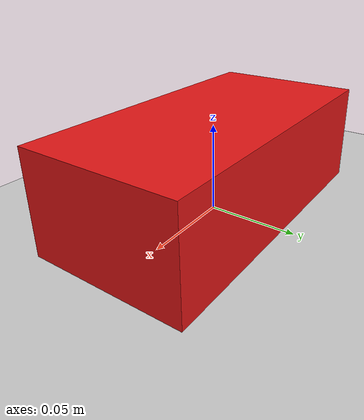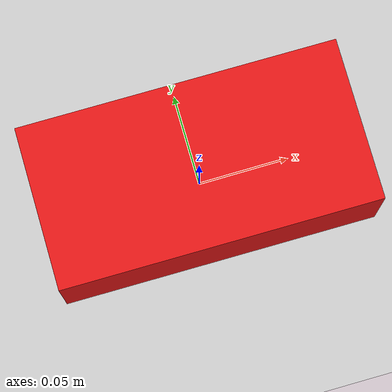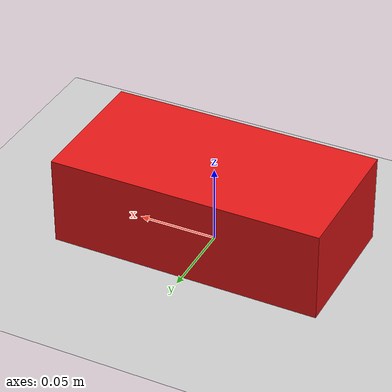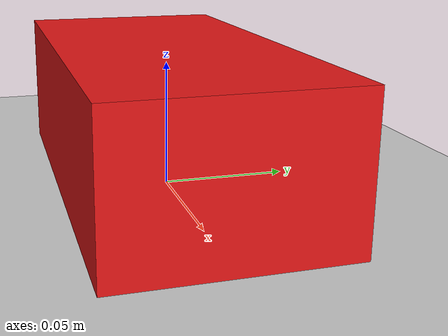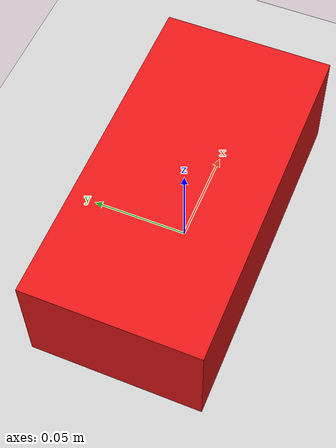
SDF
<?xml version="1.0" ?>
<sdf version="1.5">
  <world name="my_mesh">

    <include>
      <uri>model://sun</uri>
    </include>

    <include>
      <uri>model://ground_plane</uri>
    </include>

    <include>
          <uri>model://caisse</uri>
	  <model name="caisse">
	   <pose>0 0 0 0 0 0</pose>
	   <link name="caisse_link">
	   <!-- center of mass 16.500000 8.200000 5.500000-->
	   <!-- Mesh Volume is 78.575951
		Center of Mass is 0.000000 0.000000 1.902955-->
	     <pose>0 0 0 0 -0 0</pose>
	      <inertial>
		<pose>0 0 0 0 -0 0</pose>
		<mass>0.01</mass>
		<inertia>
		  <ixx>0.0001050106934</ixx>
		  <ixy>0</ixy>
		  <ixz>0</ixz>
		  <iyy>0.0002760795166</iyy>
		  <iyz>-0</iyz>
		  <izz>0.0003301207520</izz>
		</inertia>
	      </inertial>
	      <collision name="caisse_collision">
		<pose frame=''>0 0 0 0 0 0</pose>
		<geometry>
		  <box>
		    <size>0.165 0.082 0.055</size>
		  </box>
		</geometry>
		<surface>
		  <friction>
		    <ode>
		      <mu>1000</mu>
		      <mu2>500</mu2>
		      <fdir1>0 0 1</fdir1>
		      <slip1>0.0</slip1>
		      <slip2>0.0</slip2>
		    </ode>
		  </friction>
		  <contact>
		    <ode>
		      <kp>100000.000000</kp>
		      <kd>10.00000</kd>
		      <max_vel>2.000000</max_vel>
		      <min_depth>0.0001</min_depth>
		    </ode>
		  </contact>
		</surface>
	      </collision>
	      <visual name="caisse_visual">
		<pose>0 0 0 0 0 0</pose>
		<geometry>
		  <mesh>
		    <uri>/home/rhosane/.gazebo/models/caisse/meshes/caisse.stl</uri>
		    <scale>0.01 0.01 0.01</scale>
		  </mesh>
		</geometry>
		<material>
		   <script>
		      <uri>file://media/materials/scripts/gazebo.material</uri>
		      <name>Gazebo/WoodFloor</name>
		   </script>
		</material>
	      </visual>
	    </link>
          </model>
    </include>

    <include>
          <uri>model://chargeur</uri>
	  <model name='chargeur'>
	    <link name='chargeur'>
	      <pose frame=''>0 0 0 0 -0 0</pose>
	      <inertial>
		<pose frame=''>0 -0 0 0 -0 0</pose>
		<mass>0.01</mass>
		<inertia>
		  <ixx>0.0017</ixx>
		  <ixy>0</ixy>
		  <ixz>0</ixz>
		  <iyy>0.0017</iyy>
		  <iyz>0</iyz>
		  <izz>0.0017</izz>
		</inertia>
	      </inertial>
	      <collision name='chargeur_collision'>
		<pose frame=''>0 0 0 1.5708 -0 0</pose>
		<geometry>
		  <box>
		    <size>0.192 0.062 0.086</size>
		  </box>
		</geometry>
		<surface>
		  <friction>
		    <ode>
		      <mu>1000</mu>
		      <mu2>500</mu2>
		      <fdir1>0 0 1</fdir1>
		      <slip1>0.0</slip1>
		      <slip2>0.0</slip2>
		    </ode>
		  </friction>
		  <contact>
		    <ode>
		      <kp>100000.000000</kp>
		      <kd>10.00000</kd>
		      <max_vel>2.000000</max_vel>
		      <min_depth>0.0001</min_depth>
		    </ode>
		  </contact>
		</surface>
	      </collision>
	      <visual name='chargeur_visual'>
		<pose frame=''>0 0 0 1.5708 -0 0</pose>
		<geometry>
		  <mesh>
		    <scale>0.01 0.01 0.01</scale>
		    <uri>/home/rhosane/.gazebo/models/chargeur/meshes/chargeur.stl</uri>
		  </mesh>
		</geometry>
		<material>
		   <script>
		      <uri>file://media/materials/scripts/gazebo.material</uri>
		      <name>Gazebo/White</name>
		   </script>
		</material>
	      </visual>
	    </link>
	  </model>
    </include>

    <include>
          <uri>model://couverture</uri>
	  <model name='couverture'>
	    <link name='couverture'>
	      <pose frame=''>0 0 1.958523 0 0 0</pose>
	      <inertial>
		<pose frame=''>0 0 0 1.958523 0 0</pose>
		<mass>0.0258084114</mass>
		<inertia>
		  <ixx>0.1277250366</ixx>
		  <ixy>0</ixy>
		  <ixz>0</ixz>
		  <iyy>0.3290099121</iyy>
		  <iyz>0</iyz>
		  <izz>0.3967267822</izz>
		</inertia>
	      </inertial>
	      <collision name='couverture_collision'>
		<pose frame=''>0 0 0 0 0 0</pose>
		<geometry>
		  <box>
		    <size>0.17200001 0.087 0.057</size>
		  </box>
		</geometry>
		<surface>
		  <friction>
		    <ode>
		      <mu>1000</mu>
		      <mu2>500</mu2>
		      <fdir1>0 0 1</fdir1>
		      <slip1>0.0</slip1>
		      <slip2>0.0</slip2>
		    </ode>
		  </friction>
		  <contact>
		    <ode>
		      <kp>100000.000000</kp>
		      <kd>10.00000</kd>
		      <max_vel>2.000000</max_vel>
		      <min_depth>0.0001</min_depth>
		    </ode>
		  </contact>
		</surface>
	      </collision>
	      <visual name='couverture_visual'>
		<pose frame=''>0 0 0 1.5708 -0 0</pose>
		<geometry>
		  <mesh>
		    <scale>0.01 0.01 0.01</scale>
		    <uri>/home/rhosane/.gazebo/models/couverture/meshes/couverture.stl</uri>
		  </mesh>
		</geometry>
		<material>
		 <script>
		  <uri>file://media/materials/scripts/gazebo.material</uri>
		  <name>Gazebo/White</name>
	 	 </script>
		</material>
	      </visual>
	    </link>
	  </model>
    </include>

    <include>
          <uri>model://mobile</uri>
	  <model name="mobile">
	   <pose>0 0 0 0 0 0</pose>
	   <!-- center of mass 7.399642 3.500453 0.505221-->
	   <link name="mobile_link">
	     <pose>0 0 0 0 -0 0</pose>
	      <inertial>
		<pose>0 -0 0 0 -0 0</pose>
		<mass>0.0170</mass>
		<inertia>
		  <ixx>0.0384754028</ixx>
		  <ixy>-0.0000122884</ixy>
		  <ixz>0.000000041</ixz>
		  <iyy>0.1747939209</iyy>
		  <iyz>0.000000011</iyz>
		  <izz>0.2116997314</izz>
		</inertia>
	      </inertial>
	      <collision name="mobile_collision">
		<pose frame=''>0 0 0 0 -0 0</pose>
		<geometry>
		  <box>
		    <size>0.148 0.070 0.010</size>
		  </box>
		</geometry>
		<surface>
		  <friction>
		    <ode>
		      <mu>1000</mu>
		      <mu2>500</mu2>

		      <fdir1>0 0 1</fdir1>
		      <slip1>0.0</slip1>
		      <slip2>0.0</slip2>
		    </ode>
		  </friction>
		  <contact>
		    <ode>
		      <kp>100000.000000</kp>
		      <kd>10.00000</kd>
		      <max_vel>2.000000</max_vel>
		      <min_depth>0.0001</min_depth>
		    </ode>
		  </contact>
		</surface>
	      </collision>
	      <visual name="mobile_visual">
		<pose>-0.07399642 -0.03500453 -0.00505221 0 -0 0</pose>
		<geometry>
		  <mesh>
		    <uri>/home/rhosane/.gazebo/models/mobile/meshes/mobile.stl</uri>
		    <scale>0.01 0.01 0.01</scale>
		  </mesh>
		</geometry>
		<material>
		   <script>
		      <uri>file://media/materials/scripts/gazebo.material</uri>
		      <name>Gazebo/Wood</name>
		   </script>
		</material>
	      </visual>
	    </link>
	  </model>
    </include>
  </world>
</sdf>

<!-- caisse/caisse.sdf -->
<sdf version="1.5">
  <model name="caisse">
   <pose>0 0 0 0 0 0</pose>
   <link name="caisse_link">
   <!-- center of mass 16.500000 8.200000 5.500000-->
   <!-- Mesh Volume is 78.575951
	Center of Mass is 0.000000 0.000000 1.902955-->
     <pose>0 0 0 0 -0 0</pose>
      <inertial>
        <pose>0 0 0.027500 0 -0 0</pose>
        <mass>0.01</mass>
        <inertia>
          <ixx>0.00001050106934</ixx>
          <ixy>0</ixy>
          <ixz>0</ixz>
          <iyy>0.00002760795166</iyy>
          <iyz>-0</iyz>
          <izz>0.00003301207520</izz>
        </inertia>
      </inertial>
      <collision name="caisse_collision">
        <pose frame=''>0 0 0 0 -0 0</pose>
        <geometry>
          <mesh>
            <uri>/home/rhosane/.gazebo/models/caisse/meshes/caisse.stl</uri>
            <scale>0.01 0.01 0.01</scale>
          </mesh>
        </geometry>
        <surface>
          <friction>
            <ode>
              <mu>1000</mu>
              <mu2>500</mu2>
              <fdir1>0 0 1</fdir1>
              <slip1>0.0</slip1>
              <slip2>0.0</slip2>
            </ode>
          </friction>
          <contact>
            <ode>
              <kp>100000.000000</kp>
              <kd>10.00000</kd>
              <max_vel>2.000000</max_vel>
              <min_depth>0.0001</min_depth>
            </ode>
          </contact>
        </surface>
      </collision>
      <visual name="caisse_visual">
        <pose>0 0 0 0 0 0</pose>
        <geometry>
          <mesh>
            <uri>/home/rhosane/.gazebo/models/caisse/meshes/caisse.stl</uri>
            <scale>0.01 0.01 0.01</scale>
          </mesh>
        </geometry>
        <material>
           <ambient>0.8 0.544 0.16 1</ambient>
           <diffuse>0.8 0.544 0.16 1</diffuse>
           <specular>0 0 0 1</specular>
           <emissive>0.1 0.1 0.1 1</emissive>
        </material>
      </visual>
    </link>
  </model>
</sdf>

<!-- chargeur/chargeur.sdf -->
<sdf version='1.6'>
  <model name='chargeur_0'>
    <link name='chargeur'>
      <pose frame=''>0 0 0 0 -0 0</pose>
      <inertial>
        <pose frame=''>0.018 0.012 0.0255 0.0 -0 0</pose>
        <mass>0.004</mass>
        <inertia>
          <ixx>1.06e-06</ixx>
          <ixy>0</ixy>
          <ixz>0</ixz>
          <iyy>1.30e-06</iyy>
          <iyz>0</iyz>
          <izz>0.62e-06</izz>
        </inertia>
      </inertial>
      <self_collide>0</self_collide>
      <enable_wind>0</enable_wind>
      <kinematic>0</kinematic>
      <gravity>1</gravity>
      <visual name='chargeur_visual'>
        <pose frame=''>0 0 0 0 -0 0</pose>
        <geometry>
          <mesh>
            <scale>0.01 0.01 0.01</scale>
            <uri>/home/rhosane/.gazebo/models/chargeur/meshes/chargeur.stl</uri>
          </mesh>
        </geometry>
        <material>
          <script>
            <uri>file://media/materials/scripts/gazebo.material</uri>
            <name>Gazebo/White</name>
          </script>
          <shader type='pixel'>
            <normal_map>__default__</normal_map>
          </shader>
          <ambient>0.8 0.8 0.8 1</ambient>
          <diffuse>1 1 1 1</diffuse>
          <specular>0 0 0 1</specular>
          <emissive>0.3 0.3 0.3 1</emissive>
        </material>
        <transparency>0</transparency>
        <cast_shadows>1</cast_shadows>
      </visual>
      <collision name='chargeur_collision'>
        <laser_retro>0</laser_retro>
        <max_contacts>10</max_contacts>
        <pose frame=''>0.018 0.012 0.0255 0 -0 0</pose>
        <geometry>
          <box>
            <size>0.036 0.024 0.051</size>
          </box>
        </geometry>
        <surface>
          <friction>
            <ode>
              <mu>1000</mu>
              <mu2>500</mu2>
              <fdir1>0 0 1</fdir1>
              <slip1>0</slip1>
              <slip2>0</slip2>
            </ode>
            <torsional>
              <coefficient>1</coefficient>
              <patch_radius>0</patch_radius>
              <surface_radius>0</surface_radius>
              <use_patch_radius>1</use_patch_radius>
              <ode>
                <slip>0</slip>
              </ode>
            </torsional>
          </friction>
          <bounce>
            <restitution_coefficient>0</restitution_coefficient>
            <threshold>1e+06</threshold>
          </bounce>
          <contact>
            <collide_without_contact>0</collide_without_contact>
            <collide_without_contact_bitmask>1</collide_without_contact_bitmask>
            <collide_bitmask>1</collide_bitmask>
            <ode>
              <soft_cfm>0</soft_cfm>
              <soft_erp>0.2</soft_erp>
              <kp>100000</kp>
              <kd>10</kd>
              <max_vel>2</max_vel>
              <min_depth>0.0001</min_depth>
            </ode>
            <bullet>
              <split_impulse>1</split_impulse>
              <split_impulse_penetration_threshold>-0.01</split_impulse_penetration_threshold>
              <soft_cfm>0</soft_cfm>
              <soft_erp>0.2</soft_erp>
              <kp>100000</kp>
              <kd>10</kd>
            </bullet>
          </contact>
        </surface>
      </collision>
    </link>
    <static>0</static>
    <allow_auto_disable>1</allow_auto_disable>
  </model>
</sdf>

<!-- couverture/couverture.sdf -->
<sdf version="1.5">
  <model name='couverture'>
    <link name='couverture'>
      <pose frame=''>0 0 0.057 0 3.140187 0</pose>
      <inertial>
        <pose frame=''>0 0 0.0285 0 0 0</pose>
        <mass>0.01142950</mass>
        <inertia>
          <ixx>0.00001277250366</ixx>
          <ixy>0</ixy>
          <ixz>0</ixz>
          <iyy>0.00003290099121</iyy>
          <iyz>0</iyz>
          <izz>0.00003967267822</izz>
        </inertia>
      </inertial>
      <collision name='couverture_collision'>
        <pose frame=''>0 0 0.0285 0 0 0</pose>
        <geometry>
          <box>
            <size>0.17200001 0.087 0.057</size>
          </box>
        </geometry>
        <surface>
          <friction>
            <ode>
              <mu>1000</mu>
              <mu2>500</mu2>
              <fdir1>0 0 1</fdir1>
              <slip1>0.0</slip1>
              <slip2>0.0</slip2>
            </ode>
          </friction>
          <contact>
            <ode>
              <kp>100000.000000</kp>
              <kd>10.00000</kd>
              <max_vel>2.000000</max_vel>
              <min_depth>0.0001</min_depth>
            </ode>
          </contact>
        </surface>
      </collision>
      <visual name='couverture_visual'>
        <pose frame=''>0 0 0 0 -0 0</pose>
        <geometry>
          <mesh>
            <scale>0.01 0.01 0.01</scale>
            <uri>/home/rhosane/.gazebo/models/couverture/meshes/couverture.stl</uri>
          </mesh>
        </geometry>
        <material>
          <ambient>0.9 0.09 0.09 1</ambient>
          <diffuse>0.9 0.09 0.09 1</diffuse>
          <specular>0 0 0 1</specular>
          <emissive>0.1 0.1 0.1 1</emissive>
        </material>
      </visual>
    </link>
  </model>
</sdf>

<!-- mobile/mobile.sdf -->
<sdf version="1.5">
  <model name="mobile">
   <pose>0 0 0 0 0 0</pose>
   <!-- center of mass 7.399642 3.500453 0.505221-->
   <link name="mobile_link">
     <pose>0 0.025 0.005 0 -0 0</pose>
      <inertial>
        <pose>0 -0 0 0 -0 0</pose>
        <mass>0.1</mass>
        <inertia>
          <ixx>0.0000384754028</ixx>
          <ixy>0</ixy>
          <ixz>0.0</ixz>
          <iyy>0.0001747939209</iyy>
          <iyz>0.0</iyz>
          <izz>0.0002116997314</izz>
        </inertia>
      </inertial>
      <collision name="mobile_collision">
        <pose>-0.07399642 -0.03500453 -0.005 0 -0 0</pose>
        <geometry>
          <mesh>
            <uri>/home/rhosane/.gazebo/models/mobile/meshes/mobile.stl</uri>
            <scale>0.01 0.01 0.01</scale>
          </mesh>
        </geometry>
        <surface>
          <friction>
            <ode>
              <mu>1000</mu>
              <mu2>500</mu2>

              <fdir1>0 0 1</fdir1>
              <slip1>0.0</slip1>
              <slip2>0.0</slip2>
            </ode>
          </friction>
          <contact>
            <ode>
              <kp>100000.000000</kp>
              <kd>10.00000</kd>
              <max_vel>2.000000</max_vel>
              <min_depth>0.0001</min_depth>
            </ode>
          </contact>
        </surface>
      </collision>
      <visual name="mobile_visual">
        <pose>-0.07399642 -0.03500453 -0.005 0 -0 0</pose>
        <geometry>
          <mesh>
            <uri>/home/rhosane/.gazebo/models/mobile/meshes/mobile.stl</uri>
            <scale>0.01 0.01 0.01</scale>
          </mesh>
        </geometry>
        <material>
           <ambient>80 220 100 1</ambient>
           <diffuse>80 220 100 1</diffuse>
           <specular>0 0 0 1</specular>
           <emissive>0.1 0.1 0.1 1</emissive>
        </material>
      </visual>
    </link>
  </model>
</sdf>
